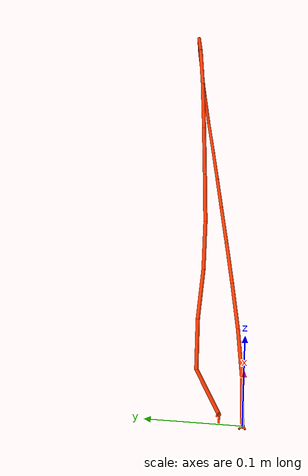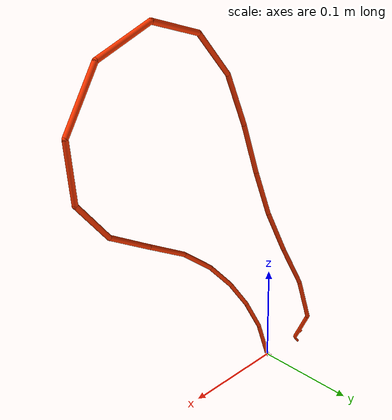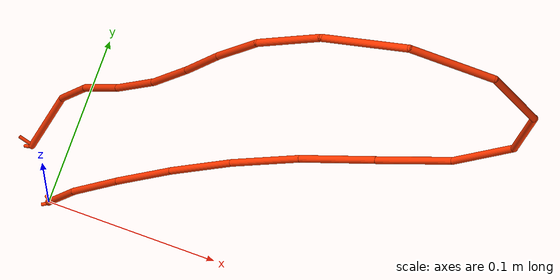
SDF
<?xml version="1.0" ?>
<sdf version="1.9">
  <model name="cable">
    <link name='cable_end_0'>
      <pose>0 0 0 0 0 0</pose>
      <inertial>
        <pose>0 0 0 0 0 0</pose>
        <mass>0</mass>
        <inertia>
          <ixx>0.001</ixx>
          <ixy>0</ixy>
          <ixz>0</ixz>
          <iyy>0.001</iyy>
          <iyz>0</iyz>
          <izz>0.001</izz>
        </inertia>
      </inertial>
      <visual name='base_vis'>
        <pose>0 0 0 0 0 0</pose>
        <geometry>
          <sphere>
            <radius>0.002</radius>
          </sphere>
        </geometry>
        <material>
          <diffuse>1 0.219999999 0 1</diffuse>
          <specular>0.5 0.5 0.5 1</specular>
          <pbr>
            <metal>
              <roughness>0.01</roughness>
              <metalness>0.01</metalness>
            </metal>
          </pbr>
        </material>
      </visual>
      <enable_wind>false</enable_wind>
    </link>
    <joint name='joint_end_0' type='ball'>
      <pose>-1.14941e-17 -5.22487e-19 -0.024 0.024762999999999993 1.7999999999999909e-05 -0.061838999999999998</pose>
      <child>link_1</child>
      <parent>cable_end_0</parent>
      <axis>
        <xyz>1.1085372693042383e-16 -1.6263032587345614e-18 1</xyz>
        <limit>
          <lower>-inf</lower>
          <upper>inf</upper>
          <effort>inf</effort>
          <velocity>inf</velocity>
          <stiffness>100000000</stiffness>
          <dissipation>1</dissipation>
        </limit>
        <dynamics>
          <spring_reference>0</spring_reference>
          <spring_stiffness>0</spring_stiffness>
          <damping>0.20000000000000001</damping>
          <friction>0</friction>
        </dynamics>
      </axis>
    </joint>
    <link name='link_1'>
      <pose>0.0081123576506521022 0.0009776753850541664 0.022564375612428078 0.026207738908796071 0.34650748597063979 0.19696564987561502</pose>
      <inertial>
        <pose>0 0 0 0 0 0</pose>
        <mass>0</mass>
        <inertia>
          <ixx>0.001</ixx>
          <ixy>0</ixy>
          <ixz>0</ixz>
          <iyy>0.001</iyy>
          <iyz>0</iyz>
          <izz>0.001</izz>
        </inertia>
      </inertial>
      <collision name='link_1_collision'>
        <pose>0 0 0.0060000000000000001 0 0 0</pose>
        <geometry>
          <capsule>
            <length>0.035999999999999997</length>
            <radius>0.002</radius>
          </capsule>
        </geometry>
        <surface>
          <friction>
            <torsional>
              <coefficient>0.050000000000000003</coefficient>
            </torsional>
            <bullet>
              <friction>0.050000000000000003</friction>
              <friction2>0.050000000000000003</friction2>
            </bullet>
          </friction>
        </surface>
      </collision>
      <visual name='link_1_vis'>
        <pose>0 0 0 0 0 0</pose>
        <geometry>
          <capsule>
            <length>0.048000000000000001</length>
            <radius>0.002</radius>
          </capsule>
        </geometry>
        <material>
          <diffuse>1 0.219999999 0 1</diffuse>
          <specular>0.5 0.5 0.5 1</specular>
          <pbr>
            <metal>
              <roughness>0.01</roughness>
              <metalness>0.01</metalness>
            </metal>
          </pbr>
        </material>
      </visual>
      <enable_wind>false</enable_wind>
    </link>
    <link name='link_2'>
      <pose>0.028781688985136666 0.0048810412775993628 0.065365995105386876 0.15436333428347698 0.54795253558487866 0.5191576952882645</pose>
      <inertial>
        <pose>0 0 0 0 0 0</pose>
        <mass>0</mass>
        <inertia>
          <ixx>0.001</ixx>
          <ixy>0</ixy>
          <ixz>0</ixz>
          <iyy>0.001</iyy>
          <iyz>0</iyz>
          <izz>0.001</izz>
        </inertia>
      </inertial>
      <collision name='link_2_collision'>
        <pose>0 0 0 0 0 0</pose>
        <geometry>
          <capsule>
            <length>0.048000000000000001</length>
            <radius>0.002</radius>
          </capsule>
        </geometry>
        <surface>
          <friction>
            <torsional>
              <coefficient>0.050000000000000003</coefficient>
            </torsional>
            <bullet>
              <friction>0.050000000000000003</friction>
              <friction2>0.050000000000000003</friction2>
            </bullet>
          </friction>
        </surface>
      </collision>
      <visual name='link_2_vis'>
        <pose>0 0 0 0 0 0</pose>
        <geometry>
          <capsule>
            <length>0.048000000000000001</length>
            <radius>0.002</radius>
          </capsule>
        </geometry>
        <material>
          <diffuse>1 0.219999999 0 1</diffuse>
          <specular>0.5 0.5 0.5 1</specular>
          <pbr>
            <metal>
              <roughness>0.01</roughness>
              <metalness>0.01</metalness>
            </metal>
          </pbr>
        </material>
      </visual>
      <enable_wind>false</enable_wind>
    </link>
    <link name='link_3'>
      <pose>0.055954765196015277 0.011740643016288965 0.1042190106208935 0.39883164674792387 0.57002526977873547 0.92597640976349183</pose>
      <inertial>
        <pose>0 0 0 0 0 0</pose>
        <mass>0</mass>
        <inertia>
          <ixx>0.001</ixx>
          <ixy>0</ixy>
          <ixz>0</ixz>
          <iyy>0.001</iyy>
          <iyz>0</iyz>
          <izz>0.001</izz>
        </inertia>
      </inertial>
      <collision name='link_3_collision'>
        <pose>0 0 0 0 0 0</pose>
        <geometry>
          <capsule>
            <length>0.048000000000000001</length>
            <radius>0.002</radius>
          </capsule>
        </geometry>
        <surface>
          <friction>
            <torsional>
              <coefficient>0.050000000000000003</coefficient>
            </torsional>
            <bullet>
              <friction>0.050000000000000003</friction>
              <friction2>0.050000000000000003</friction2>
            </bullet>
          </friction>
        </surface>
      </collision>
      <visual name='link_3_vis'>
        <pose>0 0 0 0 0 0</pose>
        <geometry>
          <capsule>
            <length>0.048000000000000001</length>
            <radius>0.002</radius>
          </capsule>
        </geometry>
        <material>
          <diffuse>1 0.219999999 0 1</diffuse>
          <specular>0.5 0.5 0.5 1</specular>
          <pbr>
            <metal>
              <roughness>0.01</roughness>
              <metalness>0.01</metalness>
            </metal>
          </pbr>
        </material>
      </visual>
      <enable_wind>false</enable_wind>
    </link>
    <link name='link_4'>
      <pose>0.086798058944686618 0.019818340546053637 0.14000505506426453 0.67249681628542268 0.41458322107515083 1.3525368160467881</pose>
      <inertial>
        <pose>0 0 0 0 0 0</pose>
        <mass>0</mass>
        <inertia>
          <ixx>0.001</ixx>
          <ixy>0</ixy>
          <ixz>0</ixz>
          <iyy>0.001</iyy>
          <iyz>0</iyz>
          <izz>0.001</izz>
        </inertia>
      </inertial>
      <collision name='link_4_collision'>
        <pose>0 0 0 0 0 0</pose>
        <geometry>
          <capsule>
            <length>0.048000000000000001</length>
            <radius>0.002</radius>
          </capsule>
        </geometry>
        <surface>
          <friction>
            <torsional>
              <coefficient>0.050000000000000003</coefficient>
            </torsional>
            <bullet>
              <friction>0.050000000000000003</friction>
              <friction2>0.050000000000000003</friction2>
            </bullet>
          </friction>
        </surface>
      </collision>
      <visual name='link_4_vis'>
        <pose>0 0 0 0 0 0</pose>
        <geometry>
          <capsule>
            <length>0.048000000000000001</length>
            <radius>0.002</radius>
          </capsule>
        </geometry>
        <material>
          <diffuse>1 0.219999999 0 1</diffuse>
          <specular>0.5 0.5 0.5 1</specular>
          <pbr>
            <metal>
              <roughness>0.01</roughness>
              <metalness>0.01</metalness>
            </metal>
          </pbr>
        </material>
      </visual>
      <enable_wind>false</enable_wind>
    </link>
    <link name='link_5'>
      <pose>0.12114712849713949 0.028149986697619311 0.17229819566132509 0.8856605201537171 0.078335563954195817 1.7341914044343241</pose>
      <inertial>
        <pose>0 0 0 0 0 0</pose>
        <mass>0</mass>
        <inertia>
          <ixx>0.001</ixx>
          <ixy>0</ixy>
          <ixz>0</ixz>
          <iyy>0.001</iyy>
          <iyz>0</iyz>
          <izz>0.001</izz>
        </inertia>
      </inertial>
      <collision name='link_5_collision'>
        <pose>0 0 0 0 0 0</pose>
        <geometry>
          <capsule>
            <length>0.048000000000000001</length>
            <radius>0.002</radius>
          </capsule>
        </geometry>
        <surface>
          <friction>
            <torsional>
              <coefficient>0.050000000000000003</coefficient>
            </torsional>
            <bullet>
              <friction>0.050000000000000003</friction>
              <friction2>0.050000000000000003</friction2>
            </bullet>
          </friction>
        </surface>
      </collision>
      <visual name='link_5_vis'>
        <pose>0 0 0 0 0 0</pose>
        <geometry>
          <capsule>
            <length>0.048000000000000001</length>
            <radius>0.002</radius>
          </capsule>
        </geometry>
        <material>
          <diffuse>1 0.219999999 0 1</diffuse>
          <specular>0.5 0.5 0.5 1</specular>
          <pbr>
            <metal>
              <roughness>0.01</roughness>
              <metalness>0.01</metalness>
            </metal>
          </pbr>
        </material>
      </visual>
      <enable_wind>false</enable_wind>
    </link>
    <link name='link_6'>
      <pose>0.15931710264628585 0.036236000230019161 0.19990239674507759 0.9551074142060807 -0.44173654594081657 2.0570807693374231</pose>
      <inertial>
        <pose>0 0 0 0 0 0</pose>
        <mass>0</mass>
        <inertia>
          <ixx>0.001</ixx>
          <ixy>0</ixy>
          <ixz>0</ixz>
          <iyy>0.001</iyy>
          <iyz>0</iyz>
          <izz>0.001</izz>
        </inertia>
      </inertial>
      <collision name='link_6_collision'>
        <pose>0 0 0 0 0 0</pose>
        <geometry>
          <capsule>
            <length>0.048000000000000001</length>
            <radius>0.002</radius>
          </capsule>
        </geometry>
        <surface>
          <friction>
            <torsional>
              <coefficient>0.050000000000000003</coefficient>
            </torsional>
            <bullet>
              <friction>0.050000000000000003</friction>
              <friction2>0.050000000000000003</friction2>
            </bullet>
          </friction>
        </surface>
      </collision>
      <visual name='link_6_vis'>
        <pose>0 0 0 0 0 0</pose>
        <geometry>
          <capsule>
            <length>0.048000000000000001</length>
            <radius>0.002</radius>
          </capsule>
        </geometry>
        <material>
          <diffuse>1 0.219999999 0 1</diffuse>
          <specular>0.5 0.5 0.5 1</specular>
          <pbr>
            <metal>
              <roughness>0.01</roughness>
              <metalness>0.01</metalness>
            </metal>
          </pbr>
        </material>
      </visual>
      <enable_wind>false</enable_wind>
    </link>
    <link name='link_7'>
      <pose>0.19922481902592915 0.044104294741486694 0.22499834914040479 0.54067793996636371 -0.90557705722451742 2.6881567019730301</pose>
      <inertial>
        <pose>0 0 0 0 0 0</pose>
        <mass>0</mass>
        <inertia>
          <ixx>0.001</ixx>
          <ixy>0</ixy>
          <ixz>0</ixz>
          <iyy>0.001</iyy>
          <iyz>0</iyz>
          <izz>0.001</izz>
        </inertia>
      </inertial>
      <collision name='link_7_collision'>
        <pose>0 0 0 0 0 0</pose>
        <geometry>
          <capsule>
            <length>0.048000000000000001</length>
            <radius>0.002</radius>
          </capsule>
        </geometry>
        <surface>
          <friction>
            <torsional>
              <coefficient>0.050000000000000003</coefficient>
            </torsional>
            <bullet>
              <friction>0.050000000000000003</friction>
              <friction2>0.050000000000000003</friction2>
            </bullet>
          </friction>
        </surface>
      </collision>
      <visual name='link_7_vis'>
        <pose>0 0 0 0 0 0</pose>
        <geometry>
          <capsule>
            <length>0.048000000000000001</length>
            <radius>0.002</radius>
          </capsule>
        </geometry>
        <material>
          <diffuse>1 0.219999999 0 1</diffuse>
          <specular>0.5 0.5 0.5 1</specular>
          <pbr>
            <metal>
              <roughness>0.01</roughness>
              <metalness>0.01</metalness>
            </metal>
          </pbr>
        </material>
      </visual>
      <enable_wind>false</enable_wind>
    </link>
    <link name='link_8'>
      <pose>0.23378588029459335 0.052596722386542116 0.25578749896940184 -0.11549602178924658 -0.6947397488505116 -2.6631946583639352</pose>
      <inertial>
        <pose>0 0 0 0 0 0</pose>
        <mass>0</mass>
        <inertia>
          <ixx>0.001</ixx>
          <ixy>0</ixy>
          <ixz>0</ixz>
          <iyy>0.001</iyy>
          <iyz>0</iyz>
          <izz>0.001</izz>
        </inertia>
      </inertial>
      <collision name='link_8_collision'>
        <pose>0 0 0 0 0 0</pose>
        <geometry>
          <capsule>
            <length>0.048000000000000001</length>
            <radius>0.002</radius>
          </capsule>
        </geometry>
        <surface>
          <friction>
            <torsional>
              <coefficient>0.050000000000000003</coefficient>
            </torsional>
            <bullet>
              <friction>0.050000000000000003</friction>
              <friction2>0.050000000000000003</friction2>
            </bullet>
          </friction>
        </surface>
      </collision>
      <visual name='link_8_vis'>
        <pose>0 0 0 0 0 0</pose>
        <geometry>
          <capsule>
            <length>0.048000000000000001</length>
            <radius>0.002</radius>
          </capsule>
        </geometry>
        <material>
          <diffuse>1 0.219999999 0 1</diffuse>
          <specular>0.5 0.5 0.5 1</specular>
          <pbr>
            <metal>
              <roughness>0.01</roughness>
              <metalness>0.01</metalness>
            </metal>
          </pbr>
        </material>
      </visual>
      <enable_wind>false</enable_wind>
    </link>
    <link name='link_9'>
      <pose>0.25160484348091039 0.060895778511012411 0.29730768322066636 -0.0014434068606314992 -0.20742773102152523 -2.2556969290544067</pose>
      <inertial>
        <pose>0 0 0 0 0 0</pose>
        <mass>0</mass>
        <inertia>
          <ixx>0.001</ixx>
          <ixy>0</ixy>
          <ixz>0</ixz>
          <iyy>0.001</iyy>
          <iyz>0</iyz>
          <izz>0.001</izz>
        </inertia>
      </inertial>
      <collision name='link_9_collision'>
        <pose>0 0 0 0 0 0</pose>
        <geometry>
          <capsule>
            <length>0.048000000000000001</length>
            <radius>0.002</radius>
          </capsule>
        </geometry>
        <surface>
          <friction>
            <torsional>
              <coefficient>0.050000000000000003</coefficient>
            </torsional>
            <bullet>
              <friction>0.050000000000000003</friction>
              <friction2>0.050000000000000003</friction2>
            </bullet>
          </friction>
        </surface>
      </collision>
      <visual name='link_9_vis'>
        <pose>0 0 0 0 0 0</pose>
        <geometry>
          <capsule>
            <length>0.048000000000000001</length>
            <radius>0.002</radius>
          </capsule>
        </geometry>
        <material>
          <diffuse>1 0.219999999 0 1</diffuse>
          <specular>0.5 0.5 0.5 1</specular>
          <pbr>
            <metal>
              <roughness>0.01</roughness>
              <metalness>0.01</metalness>
            </metal>
          </pbr>
        </material>
      </visual>
      <enable_wind>false</enable_wind>
    </link>
    <link name='link_10'>
      <pose>0.24269129580266613 0.066042222410495899 0.34125591397897531 0.51665757029900006 0.12732360675617255 -1.9044734147470059</pose>
      <inertial>
        <pose>0 0 0 0 0 0</pose>
        <mass>0</mass>
        <inertia>
          <ixx>0.001</ixx>
          <ixy>0</ixy>
          <ixz>0</ixz>
          <iyy>0.001</iyy>
          <iyz>0</iyz>
          <izz>0.001</izz>
        </inertia>
      </inertial>
      <collision name='link_10_collision'>
        <pose>0 0 0 0 0 0</pose>
        <geometry>
          <capsule>
            <length>0.048000000000000001</length>
            <radius>0.002</radius>
          </capsule>
        </geometry>
        <surface>
          <friction>
            <torsional>
              <coefficient>0.050000000000000003</coefficient>
            </torsional>
            <bullet>
              <friction>0.050000000000000003</friction>
              <friction2>0.050000000000000003</friction2>
            </bullet>
          </friction>
        </surface>
      </collision>
      <visual name='link_10_vis'>
        <pose>0 0 0 0 0 0</pose>
        <geometry>
          <capsule>
            <length>0.048000000000000001</length>
            <radius>0.002</radius>
          </capsule>
        </geometry>
        <material>
          <diffuse>1 0.219999999 0 1</diffuse>
          <specular>0.5 0.5 0.5 1</specular>
          <pbr>
            <metal>
              <roughness>0.01</roughness>
              <metalness>0.01</metalness>
            </metal>
          </pbr>
        </material>
      </visual>
      <enable_wind>false</enable_wind>
    </link>
    <link name='link_11'>
      <pose>0.20806342380622 0.065703151005541055 0.3694748567025542 1.2411633711787051 0.16144908704248181 -1.5504804196645738</pose>
      <inertial>
        <pose>0 0 0 0 0 0</pose>
        <mass>0</mass>
        <inertia>
          <ixx>0.001</ixx>
          <ixy>0</ixy>
          <ixz>0</ixz>
          <iyy>0.001</iyy>
          <iyz>0</iyz>
          <izz>0.001</izz>
        </inertia>
      </inertial>
      <collision name='link_11_collision'>
        <pose>0 0 0 0 0 0</pose>
        <geometry>
          <capsule>
            <length>0.048000000000000001</length>
            <radius>0.002</radius>
          </capsule>
        </geometry>
        <surface>
          <friction>
            <torsional>
              <coefficient>0.050000000000000003</coefficient>
            </torsional>
            <bullet>
              <friction>0.050000000000000003</friction>
              <friction2>0.050000000000000003</friction2>
            </bullet>
          </friction>
        </surface>
      </collision>
      <visual name='link_11_vis'>
        <pose>0 0 0 0 0 0</pose>
        <geometry>
          <capsule>
            <length>0.048000000000000001</length>
            <radius>0.002</radius>
          </capsule>
        </geometry>
        <material>
          <diffuse>1 0.219999999 0 1</diffuse>
          <specular>0.5 0.5 0.5 1</specular>
          <pbr>
            <metal>
              <roughness>0.01</roughness>
              <metalness>0.01</metalness>
            </metal>
          </pbr>
        </material>
      </visual>
      <enable_wind>false</enable_wind>
    </link>
    <link name='link_12'>
      <pose>0.1630071619727238 0.060780128263385913 0.36970851839007129 1.8846139236484318 -0.034842737129318867 -1.4399139280053266</pose>
      <inertial>
        <pose>0 0 0 0 0 0</pose>
        <mass>0</mass>
        <inertia>
          <ixx>0.001</ixx>
          <ixy>0</ixy>
          <ixz>0</ixz>
          <iyy>0.001</iyy>
          <iyz>0</iyz>
          <izz>0.001</izz>
        </inertia>
      </inertial>
      <collision name='link_12_collision'>
        <pose>0 0 0 0 0 0</pose>
        <geometry>
          <capsule>
            <length>0.048000000000000001</length>
            <radius>0.002</radius>
          </capsule>
        </geometry>
        <surface>
          <friction>
            <torsional>
              <coefficient>0.050000000000000003</coefficient>
            </torsional>
            <bullet>
              <friction>0.050000000000000003</friction>
              <friction2>0.050000000000000003</friction2>
            </bullet>
          </friction>
        </surface>
      </collision>
      <visual name='link_12_vis'>
        <pose>0 0 0 0 0 0</pose>
        <geometry>
          <capsule>
            <length>0.048000000000000001</length>
            <radius>0.002</radius>
          </capsule>
        </geometry>
        <material>
          <diffuse>1 0.219999999 0 1</diffuse>
          <specular>0.5 0.5 0.5 1</specular>
          <pbr>
            <metal>
              <roughness>0.01</roughness>
              <metalness>0.01</metalness>
            </metal>
          </pbr>
        </material>
      </visual>
      <enable_wind>false</enable_wind>
    </link>
    <link name='link_13'>
      <pose>0.12434149253908777 0.054788902964865216 0.34515378198234703 2.4023743088586804 -0.2121359372766006 -1.6272907677087987</pose>
      <inertial>
        <pose>0 0 0 0 0 0</pose>
        <mass>0</mass>
        <inertia>
          <ixx>0.001</ixx>
          <ixy>0</ixy>
          <ixz>0</ixz>
          <iyy>0.001</iyy>
          <iyz>0</iyz>
          <izz>0.001</izz>
        </inertia>
      </inertial>
      <collision name='link_13_collision'>
        <pose>0 0 0 0 0 0</pose>
        <geometry>
          <capsule>
            <length>0.048000000000000001</length>
            <radius>0.002</radius>
          </capsule>
        </geometry>
        <surface>
          <friction>
            <torsional>
              <coefficient>0.050000000000000003</coefficient>
            </torsional>
            <bullet>
              <friction>0.050000000000000003</friction>
              <friction2>0.050000000000000003</friction2>
            </bullet>
          </friction>
        </surface>
      </collision>
      <visual name='link_13_vis'>
        <pose>0 0 0 0 0 0</pose>
        <geometry>
          <capsule>
            <length>0.048000000000000001</length>
            <radius>0.002</radius>
          </capsule>
        </geometry>
        <material>
          <diffuse>1 0.219999999 0 1</diffuse>
          <specular>0.5 0.5 0.5 1</specular>
          <pbr>
            <metal>
              <roughness>0.01</roughness>
              <metalness>0.01</metalness>
            </metal>
          </pbr>
        </material>
      </visual>
      <enable_wind>false</enable_wind>
    </link>
    <link name='link_14'>
      <pose>0.097930536015581549 0.050297951460619966 0.30654330367736154 2.774671284743834 -0.2641756165609539 -1.9997305459073305</pose>
      <inertial>
        <pose>0 0 0 0 0 0</pose>
        <mass>0</mass>
        <inertia>
          <ixx>0.001</ixx>
          <ixy>0</ixy>
          <ixz>0</ixz>
          <iyy>0.001</iyy>
          <iyz>0</iyz>
          <izz>0.001</izz>
        </inertia>
      </inertial>
      <collision name='link_14_collision'>
        <pose>0 0 0 0 0 0</pose>
        <geometry>
          <capsule>
            <length>0.048000000000000001</length>
            <radius>0.002</radius>
          </capsule>
        </geometry>
        <surface>
          <friction>
            <torsional>
              <coefficient>0.050000000000000003</coefficient>
            </torsional>
            <bullet>
              <friction>0.050000000000000003</friction>
              <friction2>0.050000000000000003</friction2>
            </bullet>
          </friction>
        </surface>
      </collision>
      <visual name='link_14_vis'>
        <pose>0 0 0 0 0 0</pose>
        <geometry>
          <capsule>
            <length>0.048000000000000001</length>
            <radius>0.002</radius>
          </capsule>
        </geometry>
        <material>
          <diffuse>1 0.219999999 0 1</diffuse>
          <specular>0.5 0.5 0.5 1</specular>
          <pbr>
            <metal>
              <roughness>0.01</roughness>
              <metalness>0.01</metalness>
            </metal>
          </pbr>
        </material>
      </visual>
      <enable_wind>false</enable_wind>
    </link>
    <link name='link_15'>
      <pose>0.079247495796939571 0.047227253806371494 0.26280043922778529 2.942994607964025 -0.31131260037275299 -2.4015192655142084</pose>
      <inertial>
        <pose>0 0 0 0 0 0</pose>
        <mass>0</mass>
        <inertia>
          <ixx>0.001</ixx>
          <ixy>0</ixy>
          <ixz>0</ixz>
          <iyy>0.001</iyy>
          <iyz>0</iyz>
          <izz>0.001</izz>
        </inertia>
      </inertial>
      <collision name='link_15_collision'>
        <pose>0 0 0 0 0 0</pose>
        <geometry>
          <capsule>
            <length>0.048000000000000001</length>
            <radius>0.002</radius>
          </capsule>
        </geometry>
        <surface>
          <friction>
            <torsional>
              <coefficient>0.050000000000000003</coefficient>
            </torsional>
            <bullet>
              <friction>0.050000000000000003</friction>
              <friction2>0.050000000000000003</friction2>
            </bullet>
          </friction>
        </surface>
      </collision>
      <visual name='link_15_vis'>
        <pose>0 0 0 0 0 0</pose>
        <geometry>
          <capsule>
            <length>0.048000000000000001</length>
            <radius>0.002</radius>
          </capsule>
        </geometry>
        <material>
          <diffuse>1 0.219999999 0 1</diffuse>
          <specular>0.5 0.5 0.5 1</specular>
          <pbr>
            <metal>
              <roughness>0.01</roughness>
              <metalness>0.01</metalness>
            </metal>
          </pbr>
        </material>
      </visual>
      <enable_wind>false</enable_wind>
    </link>
    <link name='link_16'>
      <pose>0.061331054969658183 0.044539518121880783 0.21850369340377246 3.0592266060186866 -0.40061802346396946 -2.7923443886976385</pose>
      <inertial>
        <pose>0 0 0 0 0 0</pose>
        <mass>0</mass>
        <inertia>
          <ixx>0.001</ixx>
          <ixy>0</ixy>
          <ixz>0</ixz>
          <iyy>0.001</iyy>
          <iyz>0</iyz>
          <izz>0.001</izz>
        </inertia>
      </inertial>
      <collision name='link_16_collision'>
        <pose>0 0 0 0 0 0</pose>
        <geometry>
          <capsule>
            <length>0.048000000000000001</length>
            <radius>0.002</radius>
          </capsule>
        </geometry>
        <surface>
          <friction>
            <torsional>
              <coefficient>0.050000000000000003</coefficient>
            </torsional>
            <bullet>
              <friction>0.050000000000000003</friction>
              <friction2>0.050000000000000003</friction2>
            </bullet>
          </friction>
        </surface>
      </collision>
      <visual name='link_16_vis'>
        <pose>0 0 0 0 0 0</pose>
        <geometry>
          <capsule>
            <length>0.048000000000000001</length>
            <radius>0.002</radius>
          </capsule>
        </geometry>
        <material>
          <diffuse>1 0.219999999 0 1</diffuse>
          <specular>0.5 0.5 0.5 1</specular>
          <pbr>
            <metal>
              <roughness>0.01</roughness>
              <metalness>0.01</metalness>
            </metal>
          </pbr>
        </material>
      </visual>
      <enable_wind>false</enable_wind>
    </link>
    <link name='link_17'>
      <pose>0.041108453297096892 0.043042355333192395 0.1750978194818234 -3.1088817485743157 -0.46589598021671225 3.0841480901606073</pose>
      <inertial>
        <pose>0 0 0 0 0 0</pose>
        <mass>0</mass>
        <inertia>
          <ixx>0.001</ixx>
          <ixy>0</ixy>
          <ixz>0</ixz>
          <iyy>0.001</iyy>
          <iyz>0</iyz>
          <izz>0.001</izz>
        </inertia>
      </inertial>
      <collision name='link_17_collision'>
        <pose>0 0 0 0 0 0</pose>
        <geometry>
          <capsule>
            <length>0.048000000000000001</length>
            <radius>0.002</radius>
          </capsule>
        </geometry>
        <surface>
          <friction>
            <torsional>
              <coefficient>0.050000000000000003</coefficient>
            </torsional>
            <bullet>
              <friction>0.050000000000000003</friction>
              <friction2>0.050000000000000003</friction2>
            </bullet>
          </friction>
        </surface>
      </collision>
      <visual name='link_17_vis'>
        <pose>0 0 0 0 0 0</pose>
        <geometry>
          <capsule>
            <length>0.048000000000000001</length>
            <radius>0.002</radius>
          </capsule>
        </geometry>
        <material>
          <diffuse>1 0.219999999 0 1</diffuse>
          <specular>0.5 0.5 0.5 1</specular>
          <pbr>
            <metal>
              <roughness>0.01</roughness>
              <metalness>0.01</metalness>
            </metal>
          </pbr>
        </material>
      </visual>
      <enable_wind>false</enable_wind>
    </link>
    <link name='link_18'>
      <pose>0.019611387364338873 0.04448590474003572 0.13226872931798495 -2.9979263818605455 -0.44684526016284309 2.6695154328100239</pose>
      <inertial>
        <pose>0 0 0 0 0 0</pose>
        <mass>0</mass>
        <inertia>
          <ixx>0.001</ixx>
          <ixy>0</ixy>
          <ixz>0</ixz>
          <iyy>0.001</iyy>
          <iyz>0</iyz>
          <izz>0.001</izz>
        </inertia>
      </inertial>
      <collision name='link_18_collision'>
        <pose>0 0 0 0 0 0</pose>
        <geometry>
          <capsule>
            <length>0.048000000000000001</length>
            <radius>0.002</radius>
          </capsule>
        </geometry>
        <surface>
          <friction>
            <torsional>
              <coefficient>0.050000000000000003</coefficient>
            </torsional>
            <bullet>
              <friction>0.050000000000000003</friction>
              <friction2>0.050000000000000003</friction2>
            </bullet>
          </friction>
        </surface>
      </collision>
      <visual name='link_18_vis'>
        <pose>0 0 0 0 0 0</pose>
        <geometry>
          <capsule>
            <length>0.048000000000000001</length>
            <radius>0.002</radius>
          </capsule>
        </geometry>
        <material>
          <diffuse>1 0.219999999 0 1</diffuse>
          <specular>0.5 0.5 0.5 1</specular>
          <pbr>
            <metal>
              <roughness>0.01</roughness>
              <metalness>0.01</metalness>
            </metal>
          </pbr>
        </material>
      </visual>
      <enable_wind>false</enable_wind>
    </link>
    <link name='link_19'>
      <pose>0.0012055399908690312 0.045911721844450526 0.088130505608262966 -2.8945896969261704 -0.21656071364189206 2.3000182824417128</pose>
      <inertial>
        <pose>0 0 0 0 0 0</pose>
        <mass>0</mass>
        <inertia>
          <ixx>0.001</ixx>
          <ixy>0</ixy>
          <ixz>0</ixz>
          <iyy>0.001</iyy>
          <iyz>0</iyz>
          <izz>0.001</izz>
        </inertia>
      </inertial>
      <collision name='link_19_collision'>
        <pose>0 0 0 0 0 0</pose>
        <geometry>
          <capsule>
            <length>0.048000000000000001</length>
            <radius>0.002</radius>
          </capsule>
        </geometry>
        <surface>
          <friction>
            <torsional>
              <coefficient>0.050000000000000003</coefficient>
            </torsional>
            <bullet>
              <friction>0.050000000000000003</friction>
              <friction2>0.050000000000000003</friction2>
            </bullet>
          </friction>
        </surface>
      </collision>
      <visual name='link_19_vis'>
        <pose>0 0 0 0 0 0</pose>
        <geometry>
          <capsule>
            <length>0.048000000000000001</length>
            <radius>0.002</radius>
          </capsule>
        </geometry>
        <material>
          <diffuse>1 0.219999999 0 1</diffuse>
          <specular>0.5 0.5 0.5 1</specular>
          <pbr>
            <metal>
              <roughness>0.01</roughness>
              <metalness>0.01</metalness>
            </metal>
          </pbr>
        </material>
      </visual>
      <enable_wind>false</enable_wind>
    </link>
    <link name='link_20'>
      <pose>-0.012054177145560674 0.034187451643095168 0.045112754671838062 -2.6853089584199994 0.34219294138250184 2.0934923325675978</pose>
      <inertial>
        <pose>0 0 0 0 0 0</pose>
        <mass>0</mass>
        <inertia>
          <ixx>0.001</ixx>
          <ixy>0</ixy>
          <ixz>0</ixz>
          <iyy>0.001</iyy>
          <iyz>0</iyz>
          <izz>0.001</izz>
        </inertia>
      </inertial>
      <collision name='link_20_collision'>
        <pose>0 0 -0.0060000000000000001 0 0 0</pose>
        <geometry>
          <capsule>
            <length>0.035999999999999997</length>
            <radius>0.002</radius>
          </capsule>
        </geometry>
        <surface>
          <friction>
            <torsional>
              <coefficient>0.050000000000000003</coefficient>
            </torsional>
            <bullet>
              <friction>0.050000000000000003</friction>
              <friction2>0.050000000000000003</friction2>
            </bullet>
          </friction>
        </surface>
      </collision>
      <visual name='link_20_vis'>
        <pose>0 0 0 0 0 0</pose>
        <geometry>
          <capsule>
            <length>0.048000000000000001</length>
            <radius>0.002</radius>
          </capsule>
        </geometry>
        <material>
          <diffuse>1 0.219999999 0 1</diffuse>
          <specular>0.5 0.5 0.5 1</specular>
          <pbr>
            <metal>
              <roughness>0.01</roughness>
              <metalness>0.01</metalness>
            </metal>
          </pbr>
        </material>
      </visual>
      <enable_wind>false</enable_wind>
    </link>
    <joint name='joint_1' type='ball'>
      <pose>-3.8163900000000001e-17 4.7704899999999996e-18 -0.024 0.057665000000000015 -0.0035260000000000005 -0.14366599999999999</pose>
      <parent>link_1</parent>
      <child>link_2</child>
      <axis>
        <xyz>-6.0598769925646057e-16 -6.9392327170861313e-17 1</xyz>
        <limit>
          <lower>-inf</lower>
          <upper>inf</upper>
          <effort>inf</effort>
          <velocity>inf</velocity>
          <stiffness>100000000</stiffness>
          <dissipation>1</dissipation>
        </limit>
        <dynamics>
          <spring_reference>0</spring_reference>
          <spring_stiffness>0</spring_stiffness>
          <damping>0.20000000000000001</damping>
          <friction>0</friction>
        </dynamics>
      </axis>
    </joint>
    <joint name='joint_2' type='ball'>
      <pose>-5.8980600000000002e-17 -3.4694499999999997e-18 -0.024 0.072919999999999971 -0.015119999999999996 -0.18287300000000001</pose>
      <parent>link_2</parent>
      <child>link_3</child>
      <axis>
        <xyz>-2.6411164921746888e-16 6.2558465352413594e-17 1</xyz>
        <limit>
          <lower>-inf</lower>
          <upper>inf</upper>
          <effort>inf</effort>
          <velocity>inf</velocity>
          <stiffness>100000000</stiffness>
          <dissipation>1</dissipation>
        </limit>
        <dynamics>
          <spring_reference>0</spring_reference>
          <spring_stiffness>0</spring_stiffness>
          <damping>0.20000000000000001</damping>
          <friction>0</friction>
        </dynamics>
      </axis>
    </joint>
    <joint name='joint_3' type='ball'>
      <pose>-1.21431e-16 1.3877799999999999e-17 -0.024 0.09283799999999999 -0.037758000000000028 -0.23843600000000004</pose>
      <parent>link_3</parent>
      <child>link_4</child>
      <axis>
        <xyz>1.3877787807814469e-17 1.1102230246251564e-16 1</xyz>
        <limit>
          <lower>-inf</lower>
          <upper>inf</upper>
          <effort>inf</effort>
          <velocity>inf</velocity>
          <stiffness>100000000</stiffness>
          <dissipation>1</dissipation>
        </limit>
        <dynamics>
          <spring_reference>0</spring_reference>
          <spring_stiffness>0</spring_stiffness>
          <damping>0.20000000000000001</damping>
          <friction>0</friction>
        </dynamics>
      </axis>
    </joint>
    <joint name='joint_4' type='ball'>
      <pose>-2.4286099999999999e-17 -3.46945e-17 -0.024 0.11562100000000003 -0.082796999999999996 -0.31582500000000002</pose>
      <parent>link_4</parent>
      <child>link_5</child>
      <axis>
        <xyz>2.4286128663675294e-16 -2.2204460492503131e-16 1</xyz>
        <limit>
          <lower>-inf</lower>
          <upper>inf</upper>
          <effort>inf</effort>
          <velocity>inf</velocity>
          <stiffness>100000000</stiffness>
          <dissipation>1</dissipation>
        </limit>
        <dynamics>
          <spring_reference>0</spring_reference>
          <spring_stiffness>0</spring_stiffness>
          <damping>0.20000000000000001</damping>
          <friction>0</friction>
        </dynamics>
      </axis>
    </joint>
    <joint name='joint_5' type='ball'>
      <pose>8.3266699999999998e-17 0 -0.024 0.12748000000000004 -0.17044200000000007 -0.41081300000000026</pose>
      <parent>link_5</parent>
      <child>link_6</child>
      <axis>
        <xyz>-2.081668171172163e-17 -1.3684555315672042e-48 1</xyz>
        <limit>
          <lower>-inf</lower>
          <upper>inf</upper>
          <effort>inf</effort>
          <velocity>inf</velocity>
          <stiffness>100000000</stiffness>
          <dissipation>1</dissipation>
        </limit>
        <dynamics>
          <spring_reference>0</spring_reference>
          <spring_stiffness>0</spring_stiffness>
          <damping>0.20000000000000001</damping>
          <friction>0</friction>
        </dynamics>
      </axis>
    </joint>
    <joint name='joint_6' type='ball'>
      <pose>-6.9388900000000005e-17 -5.2041699999999999e-17 -0.024 0.077454999999999954 -0.3108280000000001 -0.47354099999999982</pose>
      <parent>link_6</parent>
      <child>link_7</child>
      <axis>
        <xyz>-5.8980598183211417e-17 -9.7144514654701234e-17 1</xyz>
        <limit>
          <lower>-inf</lower>
          <upper>inf</upper>
          <effort>inf</effort>
          <velocity>inf</velocity>
          <stiffness>100000000</stiffness>
          <dissipation>1</dissipation>
        </limit>
        <dynamics>
          <spring_reference>0</spring_reference>
          <spring_stiffness>0</spring_stiffness>
          <damping>0.20000000000000001</damping>
          <friction>0</friction>
        </dynamics>
      </axis>
    </joint>
    <joint name='joint_7' type='ball'>
      <pose>-2.77556e-16 -5.5511199999999995e-17 -0.024 -0.099142999999999981 -0.40827100000000011 -0.39838499999999988</pose>
      <parent>link_7</parent>
      <child>link_8</child>
      <axis>
        <xyz>2.2985086056692689e-16 1.8214596497756474e-16 1</xyz>
        <limit>
          <lower>-inf</lower>
          <upper>inf</upper>
          <effort>inf</effort>
          <velocity>inf</velocity>
          <stiffness>100000000</stiffness>
          <dissipation>1</dissipation>
        </limit>
        <dynamics>
          <spring_reference>0</spring_reference>
          <spring_stiffness>0</spring_stiffness>
          <damping>0.20000000000000001</damping>
          <friction>0</friction>
        </dynamics>
      </axis>
    </joint>
    <joint name='joint_8' type='ball'>
      <pose>-9.4368999999999996e-16 1.6653299999999999e-16 -0.024 -0.25860899999999998 -0.32846800000000009 -0.24861</pose>
      <parent>link_8</parent>
      <child>link_9</child>
      <axis>
        <xyz>3.421742056364252e-16 1.5265566588595902e-16 1</xyz>
        <limit>
          <lower>-inf</lower>
          <upper>inf</upper>
          <effort>inf</effort>
          <velocity>inf</velocity>
          <stiffness>100000000</stiffness>
          <dissipation>1</dissipation>
        </limit>
        <dynamics>
          <spring_reference>0</spring_reference>
          <spring_stiffness>0</spring_stiffness>
          <damping>0.20000000000000001</damping>
          <friction>0</friction>
        </dynamics>
      </axis>
    </joint>
    <joint name='joint_9' type='ball'>
      <pose>-4.1633400000000002e-16 2.2204499999999999e-16 -0.024 -0.28042499999999998 -0.20139399999999993 -0.16083399999999995</pose>
      <parent>link_9</parent>
      <child>link_10</child>
      <axis>
        <xyz>-1.214306433183765e-16 -1.0408340855860843e-16 1</xyz>
        <limit>
          <lower>-inf</lower>
          <upper>inf</upper>
          <effort>inf</effort>
          <velocity>inf</velocity>
          <stiffness>100000000</stiffness>
          <dissipation>1</dissipation>
        </limit>
        <dynamics>
          <spring_reference>0</spring_reference>
          <spring_stiffness>0</spring_stiffness>
          <damping>0.20000000000000001</damping>
          <friction>0</friction>
        </dynamics>
      </axis>
    </joint>
    <joint name='joint_10' type='ball'>
      <pose>-1.2489999999999999e-16 -5.5511199999999995e-17 -0.024 -0.2767980000000001 -0.13009000000000007 -0.12658500000000003</pose>
      <parent>link_10</parent>
      <child>link_11</child>
      <axis>
        <xyz>3.8163916471489701e-17 -1.3877787807814454e-16 1</xyz>
        <limit>
          <lower>-inf</lower>
          <upper>inf</upper>
          <effort>inf</effort>
          <velocity>inf</velocity>
          <stiffness>100000000</stiffness>
          <dissipation>1</dissipation>
        </limit>
        <dynamics>
          <spring_reference>0</spring_reference>
          <spring_stiffness>0</spring_stiffness>
          <damping>0.20000000000000001</damping>
          <friction>0</friction>
        </dynamics>
      </axis>
    </joint>
    <joint name='joint_11' type='ball'>
      <pose>-1.80411e-16 2.77556e-16 -0.024 -0.31800899999999988 -0.097124000000000016 -0.12714500000000001</pose>
      <parent>link_11</parent>
      <child>link_12</child>
      <axis>
        <xyz>9.7144514654701197e-17 5.5511151231257827e-17 1</xyz>
        <limit>
          <lower>-inf</lower>
          <upper>inf</upper>
          <effort>inf</effort>
          <velocity>inf</velocity>
          <stiffness>100000000</stiffness>
          <dissipation>1</dissipation>
        </limit>
        <dynamics>
          <spring_reference>0</spring_reference>
          <spring_stiffness>0</spring_stiffness>
          <damping>0.20000000000000001</damping>
          <friction>0</friction>
        </dynamics>
      </axis>
    </joint>
    <joint name='joint_12' type='ball'>
      <pose>-2.0816700000000001e-16 1.6653299999999999e-16 -0.024 -0.41514299999999998 -0.064825000000000021 -0.15662800000000004</pose>
      <parent>link_12</parent>
      <child>link_13</child>
      <axis>
        <xyz>4.3021142204224816e-16 1.4918621893400521e-16 1</xyz>
        <limit>
          <lower>-inf</lower>
          <upper>inf</upper>
          <effort>inf</effort>
          <velocity>inf</velocity>
          <stiffness>100000000</stiffness>
          <dissipation>1</dissipation>
        </limit>
        <dynamics>
          <spring_reference>0</spring_reference>
          <spring_stiffness>0</spring_stiffness>
          <damping>0.20000000000000001</damping>
          <friction>0</friction>
        </dynamics>
      </axis>
    </joint>
    <joint name='joint_13' type='ball'>
      <pose>1.8735e-16 8.3266699999999998e-17 -0.024 -0.47514499999999982 0.00481899999999999 -0.19548199999999996</pose>
      <parent>link_13</parent>
      <child>link_14</child>
      <axis>
        <xyz>1.2484588016170581e-16 -1.6653345369377346e-16 1</xyz>
        <limit>
          <lower>-inf</lower>
          <upper>inf</upper>
          <effort>inf</effort>
          <velocity>inf</velocity>
          <stiffness>100000000</stiffness>
          <dissipation>1</dissipation>
        </limit>
        <dynamics>
          <spring_reference>0</spring_reference>
          <spring_stiffness>0</spring_stiffness>
          <damping>0.20000000000000001</damping>
          <friction>0</friction>
        </dynamics>
      </axis>
    </joint>
    <joint name='joint_14' type='ball'>
      <pose>-8.5001500000000002e-17 -1.04083e-16 -0.024 -0.37640199999999963 0.076180000000000053 -0.18553599999999995</pose>
      <parent>link_14</parent>
      <child>link_15</child>
      <axis>
        <xyz>-2.4980018054066022e-16 -3.4694469519536099e-17 1</xyz>
        <limit>
          <lower>-inf</lower>
          <upper>inf</upper>
          <effort>inf</effort>
          <velocity>inf</velocity>
          <stiffness>100000000</stiffness>
          <dissipation>1</dissipation>
        </limit>
        <dynamics>
          <spring_reference>0</spring_reference>
          <spring_stiffness>0</spring_stiffness>
          <damping>0.20000000000000001</damping>
          <friction>0</friction>
        </dynamics>
      </axis>
    </joint>
    <joint name='joint_15' type='ball'>
      <pose>-2.9490300000000001e-17 -1.04083e-16 -0.024 -0.23104200000000003 0.090075999999999989 -0.13426600000000005</pose>
      <parent>link_15</parent>
      <child>link_16</child>
      <axis>
        <xyz>-9.3675067702747583e-17 -1.1102230246251563e-16 1</xyz>
        <limit>
          <lower>-inf</lower>
          <upper>inf</upper>
          <effort>inf</effort>
          <velocity>inf</velocity>
          <stiffness>100000000</stiffness>
          <dissipation>1</dissipation>
        </limit>
        <dynamics>
          <spring_reference>0</spring_reference>
          <spring_stiffness>0</spring_stiffness>
          <damping>0.20000000000000001</damping>
          <friction>0</friction>
        </dynamics>
      </axis>
    </joint>
    <joint name='joint_16' type='ball'>
      <pose>-6.9388900000000004e-18 -4.1633400000000002e-17 -0.024 -0.13905600000000001 0.075479000000000004 -0.092463999999999991</pose>
      <parent>link_16</parent>
      <child>link_17</child>
      <axis>
        <xyz>6.5160550566378816e-17 -4.8572257327350586e-17 1</xyz>
        <limit>
          <lower>-inf</lower>
          <upper>inf</upper>
          <effort>inf</effort>
          <velocity>inf</velocity>
          <stiffness>100000000</stiffness>
          <dissipation>1</dissipation>
        </limit>
        <dynamics>
          <spring_reference>0</spring_reference>
          <spring_stiffness>0</spring_stiffness>
          <damping>0.20000000000000001</damping>
          <friction>0</friction>
        </dynamics>
      </axis>
    </joint>
    <joint name='joint_17' type='ball'>
      <pose>-2.0816700000000001e-17 4.1633400000000002e-17 -0.024 -0.089686000000000002 0.059461 -0.066655000000000006</pose>
      <parent>link_17</parent>
      <child>link_18</child>
      <axis>
        <xyz>1.7867651802561108e-16 6.9388939039072122e-18 1</xyz>
        <limit>
          <lower>-inf</lower>
          <upper>inf</upper>
          <effort>inf</effort>
          <velocity>inf</velocity>
          <stiffness>100000000</stiffness>
          <dissipation>1</dissipation>
        </limit>
        <dynamics>
          <spring_reference>0</spring_reference>
          <spring_stiffness>0</spring_stiffness>
          <damping>0.20000000000000001</damping>
          <friction>0</friction>
        </dynamics>
      </axis>
    </joint>
    <joint name='joint_18' type='ball'>
      <pose>6.9388900000000004e-18 -4.5102799999999997e-17 -0.024 -0.062118000000000013 0.047213000000000012 -0.050650000000000014</pose>
      <parent>link_18</parent>
      <child>link_19</child>
      <axis>
        <xyz>4.0245584642661925e-16 8.9338259012805504e-17 1</xyz>
        <limit>
          <lower>-inf</lower>
          <upper>inf</upper>
          <effort>inf</effort>
          <velocity>inf</velocity>
          <stiffness>100000000</stiffness>
          <dissipation>1</dissipation>
        </limit>
        <dynamics>
          <spring_reference>0</spring_reference>
          <spring_stiffness>0</spring_stiffness>
          <damping>0.20000000000000001</damping>
          <friction>0</friction>
        </dynamics>
      </axis>
    </joint>
    <joint name='joint_19' type='ball'>
      <pose>-3.4694499999999997e-18 -3.46945e-17 -0.024 -0.045549999999999986 0.038313000000000014 -0.040162000000000003</pose>
      <parent>link_19</parent>
      <child>link_20</child>
      <axis>
        <xyz>1.8735013540549517e-16 3.8857805861880479e-16 1</xyz>
        <limit>
          <lower>-inf</lower>
          <upper>inf</upper>
          <effort>inf</effort>
          <velocity>inf</velocity>
          <stiffness>100000000</stiffness>
          <dissipation>1</dissipation>
        </limit>
        <dynamics>
          <spring_reference>0</spring_reference>
          <spring_stiffness>0</spring_stiffness>
          <damping>0.20000000000000001</damping>
          <friction>0</friction>
        </dynamics>
      </axis>
    </joint>
    <link name='cable_connection_0'>
      <inertial>
        <pose>0 0 0 0 0 0</pose>
        <mass>0.01</mass>
        <inertia>
          <ixx>0.001</ixx>
          <ixy>0</ixy>
          <ixz>0</ixz>
          <iyy>0.001</iyy>
          <iyz>0</iyz>
          <izz>0.001</izz>
        </inertia>
      </inertial>
      <pose>-6.5526791859227274e-07 6.5471176480258464e-08 9.7793653386357704e-07 -0.12078048642598536 -0.30755623463547133 -0.082507696285499935</pose>
      <visual name='visual_0'>
        <pose>-0.0018027756377319948 0.002 0 0.58800260357007772 1.570790000168262 1.7548420172714697e-11</pose>
        <geometry>
          <cylinder>
            <radius>0.001</radius>
            <length>0.0036055512754639895</length>
          </cylinder>
        </geometry>
        <material>
          <diffuse>1 0.219999999 0 1</diffuse>
          <specular>0.5 0.5 0.5 1</specular>
          <pbr>
            <metal>
              <roughness>0.01</roughness>
              <metalness>0.01</metalness>
            </metal>
          </pbr>
        </material>
      </visual>
      <visual name='visual_1'>
        <pose>-0.0018027756377319948 -0.002 0 -0.58800260357007772 1.570790000168262 -1.7548420172714697e-11</pose>
        <geometry>
          <cylinder>
            <radius>0.001</radius>
            <length>0.0036055512754639895</length>
          </cylinder>
        </geometry>
        <material>
          <diffuse>1 0.219999999 0 1</diffuse>
          <specular>0.5 0.5 0.5 1</specular>
          <pbr>
            <metal>
              <roughness>0.01</roughness>
              <metalness>0.01</metalness>
            </metal>
          </pbr>
        </material>
      </visual>
      <enable_wind>false</enable_wind>
    </link>
    <link name='cable_connection_1'>
      <inertial>
        <pose>0 0 0 0 0 0</pose>
        <mass>0.01</mass>
        <inertia>
          <ixx>0.001</ixx>
          <ixy>0</ixy>
          <ixz>0</ixz>
          <iyy>0.001</iyy>
          <iyz>0</iyz>
          <izz>0.001</izz>
        </inertia>
      </inertial>
      <pose>-0.017607113284018538 0.022645319881357096 0.024819161865732187 -1.4836604080584279 0.29912712135223068 3.0061945464153128</pose>
      <visual name='visual_0'>
        <pose>0.0036763602924631857 -0.0042500000000000003 0 0.61629693741479241 1.5707900004490429 2.6323725510330476e-11</pose>
        <geometry>
          <cylinder>
            <radius>0.001</radius>
            <length>0.0073527205849263713</length>
          </cylinder>
        </geometry>
        <material>
          <diffuse>1 0.219999999 0 1</diffuse>
          <specular>0.5 0.5 0.5 1</specular>
          <pbr>
            <metal>
              <roughness>0.01</roughness>
              <metalness>0.01</metalness>
            </metal>
          </pbr>
        </material>
      </visual>
      <visual name='visual_1'>
        <pose>0.0036763602924631857 0.0042500000000000003 0 -0.61629693741479241 1.5707900004490429 -2.6323725510330476e-11</pose>
        <geometry>
          <cylinder>
            <radius>0.001</radius>
            <length>0.0073527205849263713</length>
          </cylinder>
        </geometry>
        <material>
          <diffuse>1 0.219999999 0 1</diffuse>
          <specular>0.5 0.5 0.5 1</specular>
          <pbr>
            <metal>
              <roughness>0.01</roughness>
              <metalness>0.01</metalness>
            </metal>
          </pbr>
        </material>
      </visual>
      <enable_wind>false</enable_wind>
    </link>
    <joint name='joint_connection_end_0' type='ball'>
      <pose>2.11758e-22 -1.3234899999999999e-23 -3.1763699999999999e-22 0 3.4694499999999997e-18 0</pose>
      <parent>cable_end_0</parent>
      <child>cable_connection_0</child>
      <axis>
        <xyz>1.2458223316935963e-16 -1.9081958235744878e-17 1</xyz>
        <limit>
          <lower>-inf</lower>
          <upper>inf</upper>
          <effort>inf</effort>
          <velocity>inf</velocity>
          <stiffness>100000000</stiffness>
          <dissipation>1</dissipation>
        </limit>
        <dynamics>
          <spring_reference>0</spring_reference>
          <spring_stiffness>0</spring_stiffness>
          <damping>0.20000000000000001</damping>
          <friction>0</friction>
        </dynamics>
      </axis>
    </joint>
    <joint name='joint_connection_end_1' type='ball'>
      <pose>1.3877799999999999e-17 -3.46945e-17 -6.9388900000000004e-18 -0.026259000000000015 0.023921000000000012 0.76093299999999986</pose>
      <parent>link_20</parent>
      <child>cable_connection_1</child>
      <axis>
        <xyz>-2.3592239273284572e-16 -5.8113236445223112e-17 1</xyz>
        <limit>
          <lower>-inf</lower>
          <upper>inf</upper>
          <effort>inf</effort>
          <velocity>inf</velocity>
          <stiffness>100000000</stiffness>
          <dissipation>1</dissipation>
        </limit>
        <dynamics>
          <spring_reference>0</spring_reference>
          <spring_stiffness>0</spring_stiffness>
          <damping>0.20000000000000001</damping>
          <friction>0</friction>
        </dynamics>
      </axis>
    </joint>
  </model>
</sdf>
